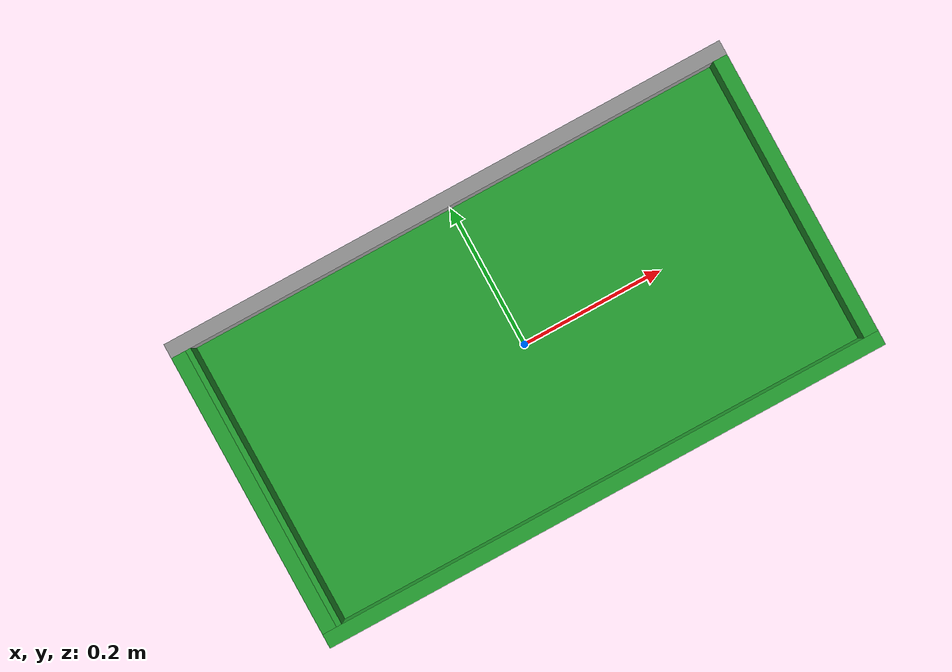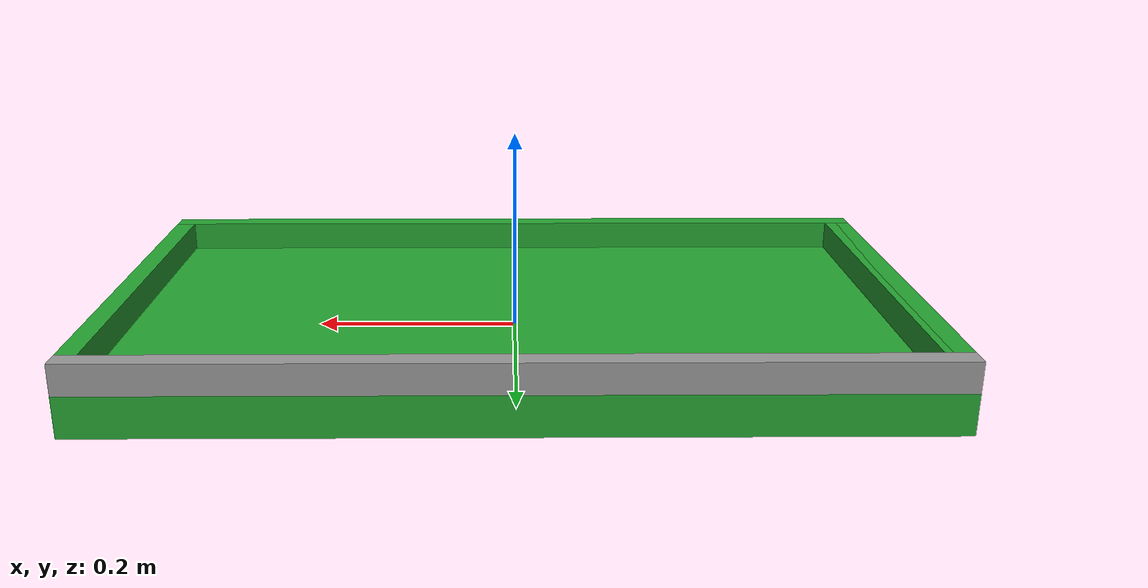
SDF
<?xml version='1.0'?>
<sdf version='1.6'>
  <model name='billiyard_table'>
    <model name='billiyard_table'>
      <link name='link_1'>
        <pose frame=''>0 0 0 0 -0 0</pose>
        <inertial>
          <mass>2</mass>
          <inertia>
            <ixx>0.166667</ixx>
            <ixy>0</ixy>
            <ixz>0</ixz>
            <iyy>0.166667</iyy>
            <iyz>0</iyz>
            <izz>0.166667</izz>
          </inertia>
          <pose frame=''>0 0 0 0 -0 0</pose>
        </inertial>
        <gravity>1</gravity>
        <self_collide>0</self_collide>
        <kinematic>0</kinematic>
        <visual name='visual'>
          <pose frame=''>0 0 0 0 -0 0</pose>
          <geometry>
            <box>
              <size>0.795 0.435 0.04</size>
            </box>
          </geometry>
          <material>
            <lighting>1</lighting>
            <script>
              <uri>file://media/materials/scripts/gazebo.material</uri>
              <name>Gazebo/Green</name>
            </script>
            <ambient>0.3 0.3 0.3 1</ambient>
            <diffuse>0.7 0.7 0.7 1</diffuse>
            <specular>0.01 0.01 0.01 1</specular>
            <emissive>0 0 0 1</emissive>
            <shader type='vertex'>
              <normal_map>__default__</normal_map>
            </shader>
          </material>
          <cast_shadows>1</cast_shadows>
          <transparency>0</transparency>
        </visual>
        <collision name='collision'>
          <laser_retro>0</laser_retro>
          <max_contacts>10</max_contacts>
          <pose frame=''>0 0 0 0 -0 0</pose>
          <geometry>
            <box>
              <size>0.795 0.435 0.04</size>
            </box>
          </geometry>
          <surface>
            <friction>
              <ode>
                <mu>1</mu>
                <mu2>1</mu2>
                <fdir1>0 0 0</fdir1>
                <slip1>0</slip1>
                <slip2>0</slip2>
              </ode>
              <torsional>
                <coefficient>1</coefficient>
                <patch_radius>0</patch_radius>
                <surface_radius>0</surface_radius>
                <use_patch_radius>1</use_patch_radius>
                <ode>
                  <slip>0</slip>
                </ode>
              </torsional>
            </friction>
            <bounce>
              <restitution_coefficient>0</restitution_coefficient>
              <threshold>1e+06</threshold>
            </bounce>
            <contact>
              <collide_without_contact>0</collide_without_contact>
              <collide_without_contact_bitmask>1</collide_without_contact_bitmask>
              <collide_bitmask>1</collide_bitmask>
              <ode>
                <soft_cfm>0</soft_cfm>
                <soft_erp>0.2</soft_erp>
                <kp>1e+13</kp>
                <kd>1</kd>
                <max_vel>0.01</max_vel>
                <min_depth>0</min_depth>
              </ode>
              <bullet>
                <split_impulse>1</split_impulse>
                <split_impulse_penetration_threshold>-0.01</split_impulse_penetration_threshold>
                <soft_cfm>0</soft_cfm>
                <soft_erp>0.2</soft_erp>
                <kp>1e+13</kp>
                <kd>1</kd>
              </bullet>
            </contact>
          </surface>
        </collision>
      </link>
      <link name='link_2'>
        <pose frame=''>0 0 0 0 -0 0</pose>
        <inertial>
          <mass>1</mass>
          <inertia>
            <ixx>0.166667</ixx>
            <ixy>0</ixy>
            <ixz>0</ixz>
            <iyy>0.166667</iyy>
            <iyz>0</iyz>
            <izz>0.166667</izz>
          </inertia>
          <pose frame=''>0 0 0 0 -0 0</pose>
        </inertial>
        <gravity>1</gravity>
        <self_collide>0</self_collide>
        <kinematic>0</kinematic>
        <visual name='visual'>
          <pose frame=''>0 -0.2075 0.035 0 -0 0</pose>
          <geometry>
            <box>
              <size>0.795 0.02 0.03</size>
            </box>
          </geometry>
          <material>
            <lighting>1</lighting>
            <script>
              <uri>file://media/materials/scripts/gazebo.material</uri>
              <name>Gazebo/Green</name>
            </script>
            <ambient>0.3 0.3 0.3 1</ambient>
            <diffuse>0.7 0.7 0.7 1</diffuse>
            <specular>0.01 0.01 0.01 1</specular>
            <emissive>0 0 0 1</emissive>
            <shader type='vertex'>
              <normal_map>__default__</normal_map>
            </shader>
          </material>
          <cast_shadows>1</cast_shadows>
          <transparency>0</transparency>
        </visual>
        <collision name='collision'>
          <laser_retro>0</laser_retro>
          <max_contacts>10</max_contacts>
          <pose frame=''>0 -0.2075 0.035 0 -0 0</pose>
          <geometry>
            <box>
              <size>0.795 0.02 0.03</size>
            </box>
          </geometry>
          <surface>
            <friction>
              <ode>
                <mu>1</mu>
                <mu2>1</mu2>
                <fdir1>0 0 0</fdir1>
                <slip1>0</slip1>
                <slip2>0</slip2>
              </ode>
              <torsional>
                <coefficient>1</coefficient>
                <patch_radius>0</patch_radius>
                <surface_radius>0</surface_radius>
                <use_patch_radius>1</use_patch_radius>
                <ode>
                  <slip>0</slip>
                </ode>
              </torsional>
            </friction>
            <bounce>
              <restitution_coefficient>0</restitution_coefficient>
              <threshold>1e+06</threshold>
            </bounce>
            <contact>
              <collide_without_contact>0</collide_without_contact>
              <collide_without_contact_bitmask>1</collide_without_contact_bitmask>
              <collide_bitmask>1</collide_bitmask>
              <ode>
                <soft_cfm>0</soft_cfm>
                <soft_erp>0.2</soft_erp>
                <kp>1e+13</kp>
                <kd>1</kd>
                <max_vel>0.01</max_vel>
                <min_depth>0</min_depth>
              </ode>
              <bullet>
                <split_impulse>1</split_impulse>
                <split_impulse_penetration_threshold>-0.01</split_impulse_penetration_threshold>
                <soft_cfm>0</soft_cfm>
                <soft_erp>0.2</soft_erp>
                <kp>1e+13</kp>
                <kd>1</kd>
              </bullet>
            </contact>
          </surface>
        </collision>
      </link>
      <link name='link_2_clone'>
        <pose frame=''>0 0 0 0 -0 0</pose>
        <inertial>
          <mass>1</mass>
          <inertia>
            <ixx>0.166667</ixx>
            <ixy>0</ixy>
            <ixz>0</ixz>
            <iyy>0.166667</iyy>
            <iyz>0</iyz>
            <izz>0.166667</izz>
          </inertia>
          <pose frame=''>0 0 -0 0 -0 0</pose>
        </inertial>
        <self_collide>0</self_collide>
        <kinematic>0</kinematic>
        <gravity>1</gravity>
        <visual name='visual'>
          <pose frame=''>0 0.2075 0.035 0 -0 0</pose>
          <geometry>
            <box>
              <size>0.795 0.02 0.03</size>
            </box>
          </geometry>
          <material>
            <lighting>1</lighting>
            <script>
              <uri>file://media/materials/scripts/gazebo.material</uri>
              <name>Gazebo/Grey</name>
            </script>
            <ambient>0.3 0.3 0.3 1</ambient>
            <diffuse>0.7 0.7 0.7 1</diffuse>
            <specular>0.01 0.01 0.01 1</specular>
            <emissive>0 0 0 1</emissive>
            <shader type='vertex'>
              <normal_map>__default__</normal_map>
            </shader>
          </material>
          <cast_shadows>1</cast_shadows>
          <transparency>0</transparency>
        </visual>
        <collision name='collision'>
          <laser_retro>0</laser_retro>
          <max_contacts>10</max_contacts>
          <pose frame=''>0 0.2075 0.035 0 -0 0</pose>
          <geometry>
            <box>
              <size>0.795 0.02 0.03</size>
            </box>
          </geometry>
          <surface>
            <friction>
              <ode>
                <mu>1</mu>
                <mu2>1</mu2>
                <fdir1>0 0 0</fdir1>
                <slip1>0</slip1>
                <slip2>0</slip2>
              </ode>
              <torsional>
                <coefficient>1</coefficient>
                <patch_radius>0</patch_radius>
                <surface_radius>0</surface_radius>
                <use_patch_radius>1</use_patch_radius>
                <ode>
                  <slip>0</slip>
                </ode>
              </torsional>
            </friction>
            <bounce>
              <restitution_coefficient>0</restitution_coefficient>
              <threshold>1e+06</threshold>
            </bounce>
            <contact>
              <collide_without_contact>0</collide_without_contact>
              <collide_without_contact_bitmask>1</collide_without_contact_bitmask>
              <collide_bitmask>1</collide_bitmask>
              <ode>
                <soft_cfm>0</soft_cfm>
                <soft_erp>0.2</soft_erp>
                <kp>1e+13</kp>
                <kd>1</kd>
                <max_vel>0.01</max_vel>
                <min_depth>0</min_depth>
              </ode>
              <bullet>
                <split_impulse>1</split_impulse>
                <split_impulse_penetration_threshold>-0.01</split_impulse_penetration_threshold>
                <soft_cfm>0</soft_cfm>
                <soft_erp>0.2</soft_erp>
                <kp>1e+13</kp>
                <kd>1</kd>
              </bullet>
            </contact>
          </surface>
        </collision>
      </link>
      <link name='link_3'>
        <pose frame=''>0 0 0 0 -0 0</pose>
        <inertial>
          <mass>1</mass>
          <inertia>
            <ixx>0.166667</ixx>
            <ixy>0</ixy>
            <ixz>0</ixz>
            <iyy>0.166667</iyy>
            <iyz>0</iyz>
            <izz>0.166667</izz>
          </inertia>
          <pose frame=''>0 0 0 0 -0 0</pose>
        </inertial>
        <gravity>1</gravity>
        <self_collide>0</self_collide>
        <kinematic>0</kinematic>
        <visual name='visual'>
          <pose frame=''>0.3875 0 0.035 0 -0 0</pose>
          <geometry>
            <box>
              <size>0.02 0.395 0.03</size>
            </box>
          </geometry>
          <material>
            <lighting>1</lighting>
            <script>
              <uri>file://media/materials/scripts/gazebo.material</uri>
              <name>Gazebo/Green</name>
            </script>
            <ambient>0.3 0.3 0.3 1</ambient>
            <diffuse>0.7 0.7 0.7 1</diffuse>
            <specular>0.01 0.01 0.01 1</specular>
            <emissive>0 0 0 1</emissive>
            <shader type='vertex'>
              <normal_map>__default__</normal_map>
            </shader>
          </material>
          <cast_shadows>1</cast_shadows>
          <transparency>0</transparency>
        </visual>
        <collision name='collision'>
          <laser_retro>0</laser_retro>
          <max_contacts>10</max_contacts>
          <pose frame=''>0.3875 0 0.035 0 -0 0</pose>
          <geometry>
            <box>
              <size>0.02 0.395 0.03</size>
            </box>
          </geometry>
          <surface>
            <friction>
              <ode>
                <mu>1</mu>
                <mu2>1</mu2>
                <fdir1>0 0 0</fdir1>
                <slip1>0</slip1>
                <slip2>0</slip2>
              </ode>
              <torsional>
                <coefficient>1</coefficient>
                <patch_radius>0</patch_radius>
                <surface_radius>0</surface_radius>
                <use_patch_radius>1</use_patch_radius>
                <ode>
                  <slip>0</slip>
                </ode>
              </torsional>
            </friction>
            <bounce>
              <restitution_coefficient>0</restitution_coefficient>
              <threshold>1e+06</threshold>
            </bounce>
            <contact>
              <collide_without_contact>0</collide_without_contact>
              <collide_without_contact_bitmask>1</collide_without_contact_bitmask>
              <collide_bitmask>1</collide_bitmask>
              <ode>
                <soft_cfm>0</soft_cfm>
                <soft_erp>0.2</soft_erp>
                <kp>1e+13</kp>
                <kd>1</kd>
                <max_vel>0.01</max_vel>
                <min_depth>0</min_depth>
              </ode>
              <bullet>
                <split_impulse>1</split_impulse>
                <split_impulse_penetration_threshold>-0.01</split_impulse_penetration_threshold>
                <soft_cfm>0</soft_cfm>
                <soft_erp>0.2</soft_erp>
                <kp>1e+13</kp>
                <kd>1</kd>
              </bullet>
            </contact>
          </surface>
        </collision>
      </link>
      <link name='link_3_clone'>
        <pose frame=''>0 0 0 0 -0 0</pose>
        <inertial>
          <mass>1</mass>
          <inertia>
            <ixx>0.166667</ixx>
            <ixy>0</ixy>
            <ixz>0</ixz>
            <iyy>0.166667</iyy>
            <iyz>0</iyz>
            <izz>0.166667</izz>
          </inertia>
          <pose frame=''>0 0 0 0 -0 0</pose>
        </inertial>
        <self_collide>0</self_collide>
        <kinematic>0</kinematic>
        <gravity>1</gravity>
        <visual name='visual'>
          <pose frame=''>-0.3875 0 0.035 0 -0 0</pose>
          <geometry>
            <box>
              <size>0.02 0.395 0.03</size>
            </box>
          </geometry>
          <material>
            <lighting>1</lighting>
            <script>
              <uri>file://media/materials/scripts/gazebo.material</uri>
              <name>Gazebo/Green</name>
            </script>
            <ambient>0.3 0.3 0.3 1</ambient>
            <diffuse>0.7 0.7 0.7 1</diffuse>
            <specular>0.01 0.01 0.01 1</specular>
            <emissive>0 0 0 1</emissive>
            <shader type='vertex'>
              <normal_map>__default__</normal_map>
            </shader>
          </material>
          <cast_shadows>1</cast_shadows>
          <transparency>0</transparency>
        </visual>
        <visual name='ModelPreview_2::link_3_clone::visual_1'>
          <pose frame=''>-0.38 0 0.035 0 -0 0</pose>
          <geometry>
            <box>
              <size>0.02 0.395 0.03</size>
            </box>
          </geometry>
          <material>
            <lighting>1</lighting>
            <script>
              <uri>file://media/materials/scripts/gazebo.material</uri>
              <name>Gazebo/Green</name>
            </script>
            <ambient>0.3 0.3 0.3 1</ambient>
            <diffuse>0.7 0.7 0.7 1</diffuse>
            <specular>0.01 0.01 0.01 1</specular>
            <emissive>0 0 0 1</emissive>
            <shader type='vertex'>
              <normal_map>__default__</normal_map>
            </shader>
          </material>
          <cast_shadows>1</cast_shadows>
          <transparency>0</transparency>
        </visual>
        <collision name='collision'>
          <laser_retro>0</laser_retro>
          <max_contacts>10</max_contacts>
          <pose frame=''>-0.3875 0 0.035 0 -0 0</pose>
          <geometry>
            <box>
              <size>0.02 0.395 0.03</size>
            </box>
          </geometry>
          <surface>
            <friction>
              <ode>
                <mu>1</mu>
                <mu2>1</mu2>
                <fdir1>0 0 0</fdir1>
                <slip1>0</slip1>
                <slip2>0</slip2>
              </ode>
              <torsional>
                <coefficient>1</coefficient>
                <patch_radius>0</patch_radius>
                <surface_radius>0</surface_radius>
                <use_patch_radius>1</use_patch_radius>
                <ode>
                  <slip>0</slip>
                </ode>
              </torsional>
            </friction>
            <bounce>
              <restitution_coefficient>0</restitution_coefficient>
              <threshold>1e+06</threshold>
            </bounce>
            <contact>
              <collide_without_contact>0</collide_without_contact>
              <collide_without_contact_bitmask>1</collide_without_contact_bitmask>
              <collide_bitmask>1</collide_bitmask>
              <ode>
                <soft_cfm>0</soft_cfm>
                <soft_erp>0.2</soft_erp>
                <kp>1e+13</kp>
                <kd>1</kd>
                <max_vel>0.01</max_vel>
                <min_depth>0</min_depth>
              </ode>
              <bullet>
                <split_impulse>1</split_impulse>
                <split_impulse_penetration_threshold>-0.01</split_impulse_penetration_threshold>
                <soft_cfm>0</soft_cfm>
                <soft_erp>0.2</soft_erp>
                <kp>1e+13</kp>
                <kd>1</kd>
              </bullet>
            </contact>
          </surface>
        </collision>
      </link>
      <static>0</static>
      <allow_auto_disable>1</allow_auto_disable>
      <pose frame=''>0 0 0 0 -0 0</pose>
    </model>
    <joint name='link_1_JOINT_0' type='fixed'>
      <parent>billiyard_table::link_1</parent>
      <child>billiyard_table::link_2</child>
      <pose frame=''>0 0 0 0 -0 0</pose>
      <physics>
        <ode>
          <limit>
            <cfm>0</cfm>
            <erp>0.2</erp>
          </limit>
          <suspension>
            <cfm>0</cfm>
            <erp>0.2</erp>
          </suspension>
        </ode>
      </physics>
    </joint>
    <joint name='link_1_JOINT_1' type='fixed'>
      <parent>billiyard_table::link_1</parent>
      <child>billiyard_table::link_2_clone</child>
      <pose frame=''>0 0 0 0 -0 0</pose>
      <physics>
        <ode>
          <limit>
            <cfm>0</cfm>
            <erp>0.2</erp>
          </limit>
          <suspension>
            <cfm>0</cfm>
            <erp>0.2</erp>
          </suspension>
        </ode>
      </physics>
    </joint>
    <joint name='link_1_JOINT_2' type='fixed'>
      <parent>billiyard_table::link_1</parent>
      <child>billiyard_table::link_3</child>
      <pose frame=''>0 0 0 0 -0 0</pose>
      <physics>
        <ode>
          <limit>
            <cfm>0</cfm>
            <erp>0.2</erp>
          </limit>
          <suspension>
            <cfm>0</cfm>
            <erp>0.2</erp>
          </suspension>
        </ode>
      </physics>
    </joint>
    <joint name='link_1_JOINT_3' type='fixed'>
      <parent>billiyard_table::link_1</parent>
      <child>billiyard_table::link_3_clone</child>
      <pose frame=''>0 0 0 0 -0 0</pose>
      <physics>
        <ode>
          <limit>
            <cfm>0</cfm>
            <erp>0.2</erp>
          </limit>
          <suspension>
            <cfm>0</cfm>
            <erp>0.2</erp>
          </suspension>
        </ode>
      </physics>
    </joint>
    <static>0</static>
    <allow_auto_disable>1</allow_auto_disable>
  </model>
</sdf>
